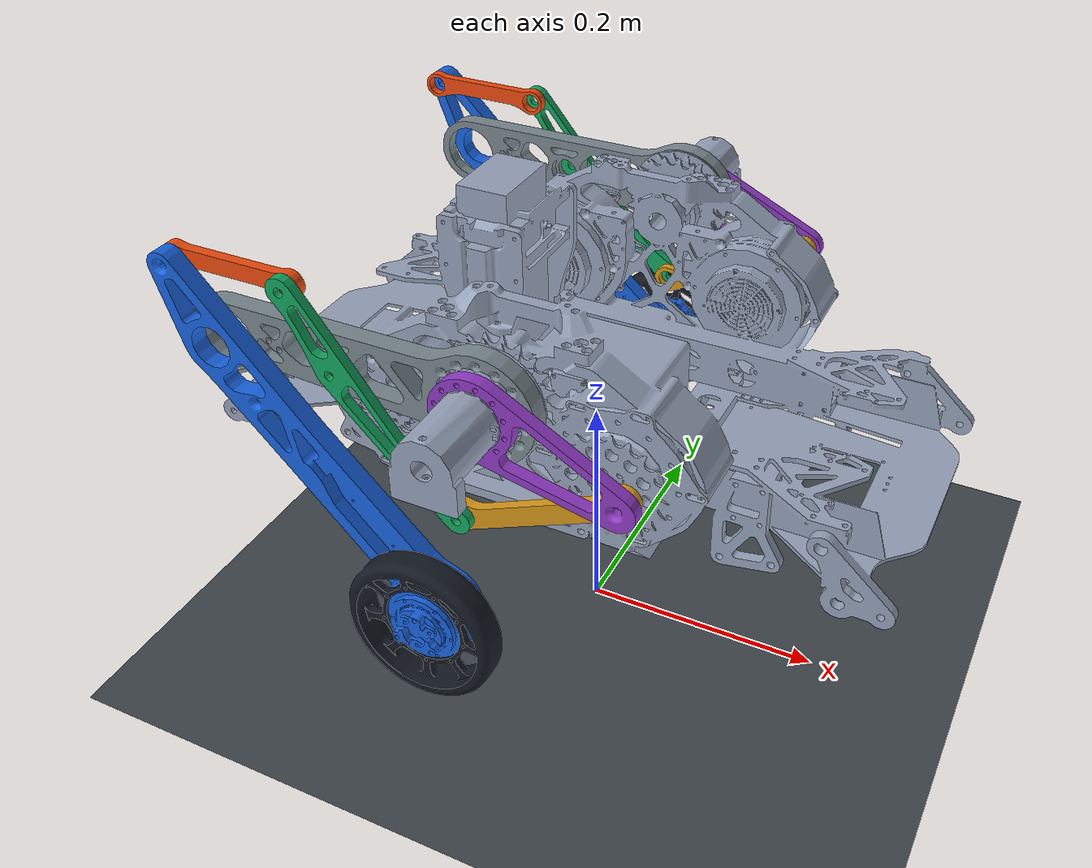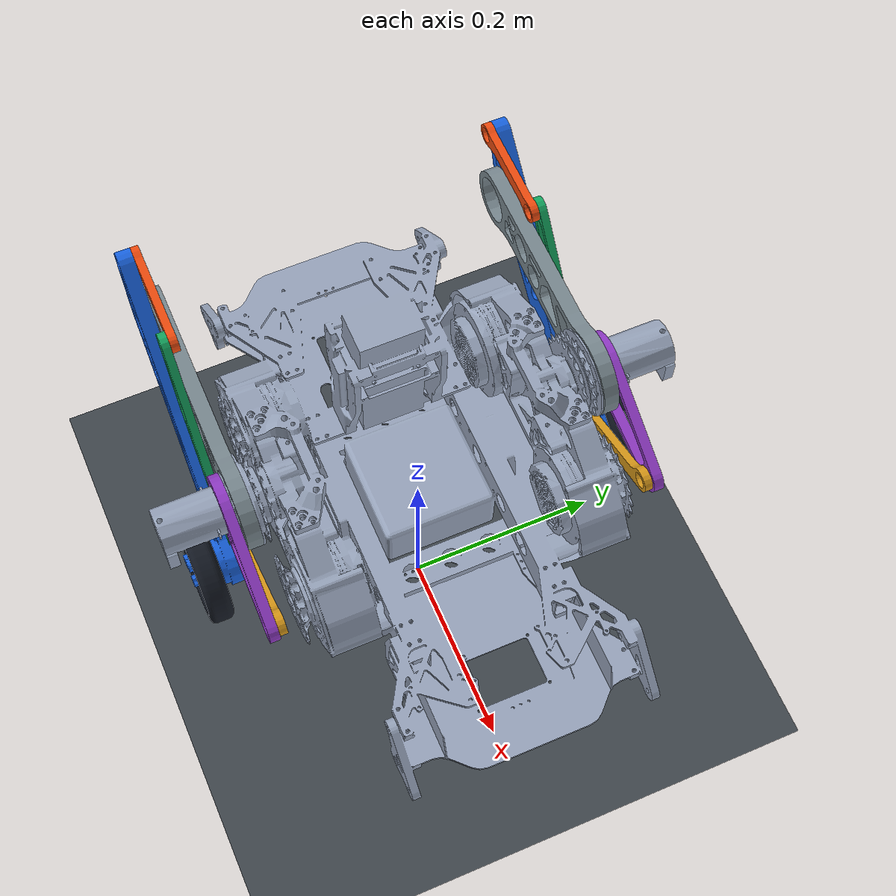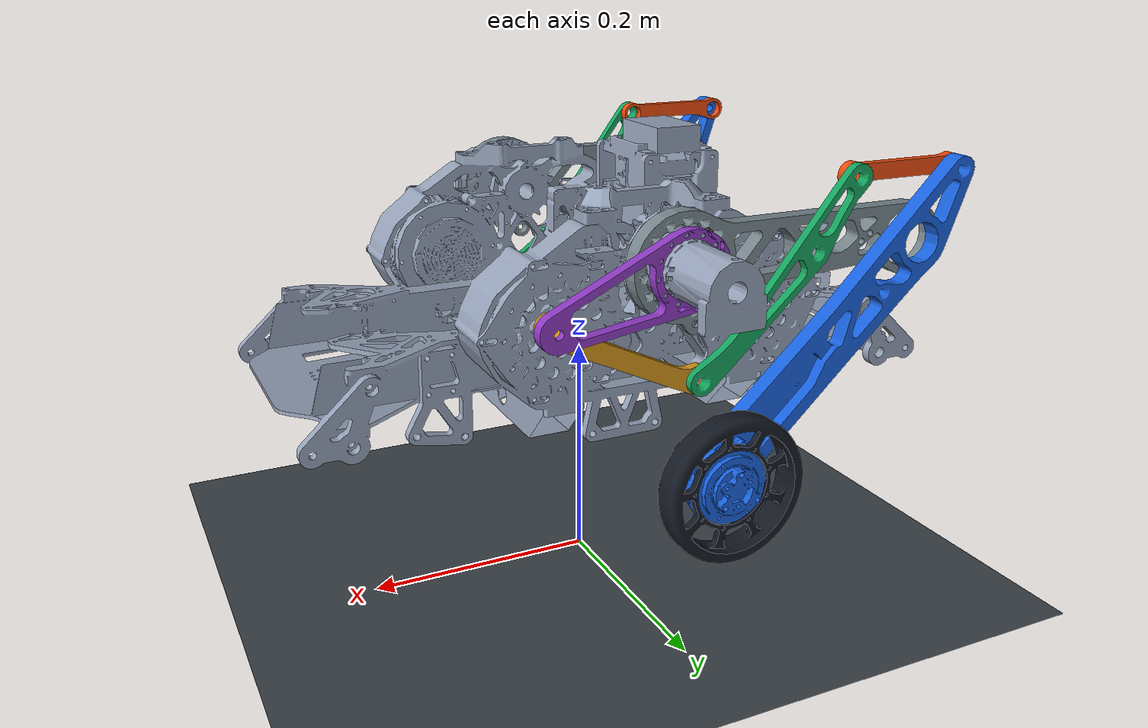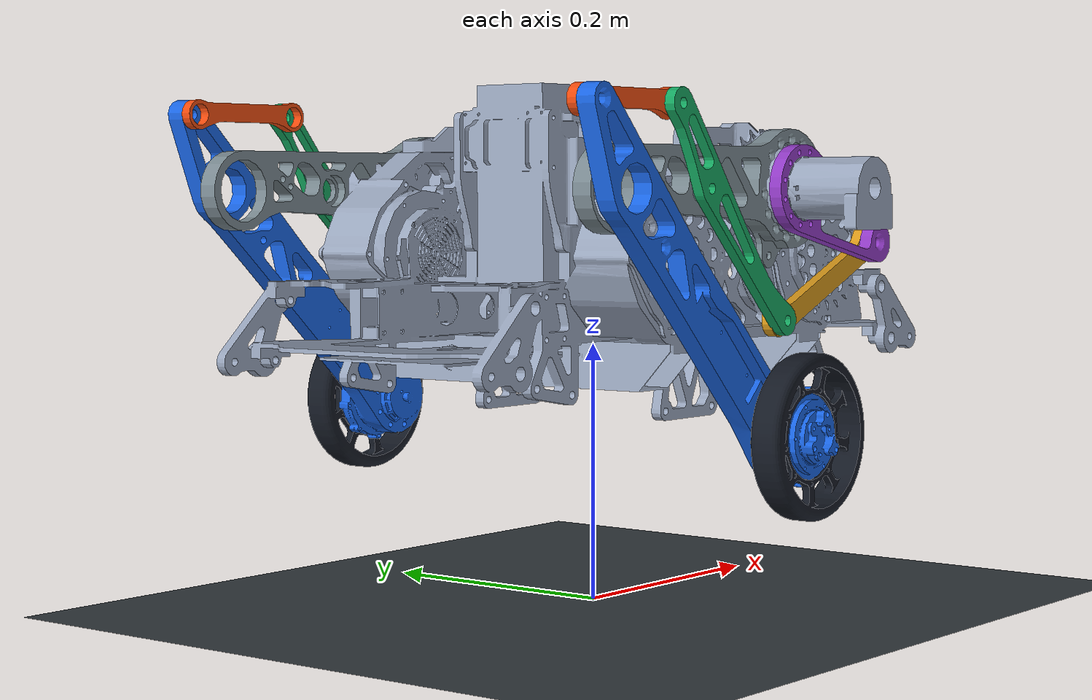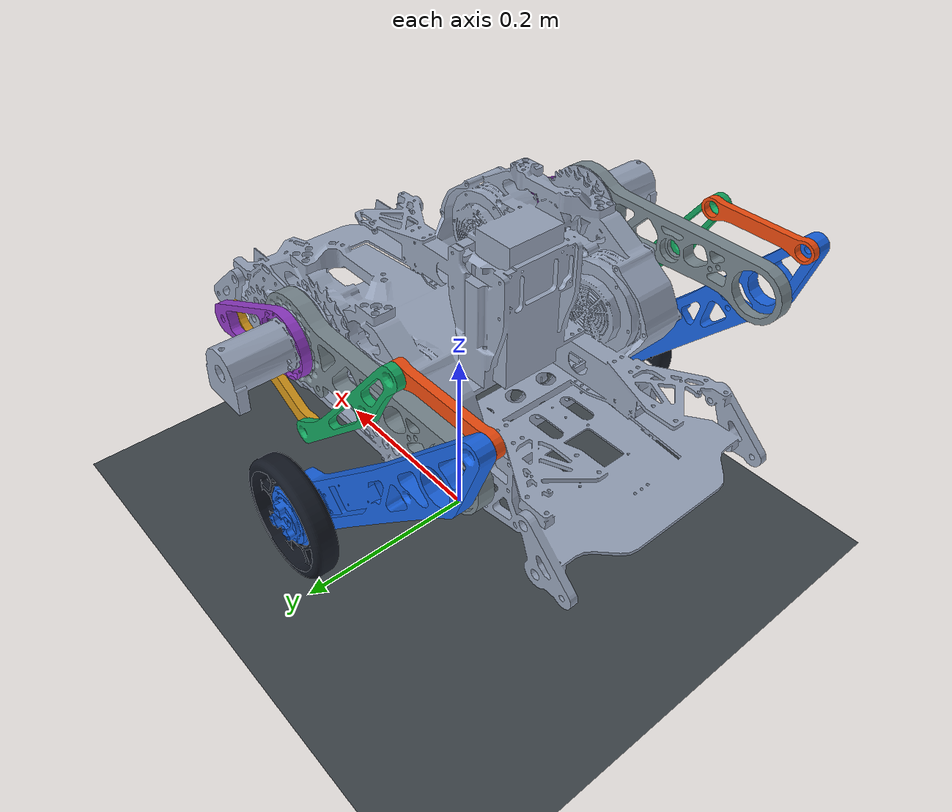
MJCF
<?xml version='1.0' encoding='utf-8'?>
<mujoco model="own_v40_closedchain_research">
  <compiler angle="radian" autolimits="true" inertiafromgeom="false" fusestatic="false" />
  <option timestep="0.0005" gravity="0 0 -9.81" integrator="implicitfast" solver="Newton" iterations="100" tolerance="1e-10" jacobian="dense">
    <flag energy="enable" />
  </option>
  <default>
    <joint damping="0.002" armature="0" solreflimit="0.002 1" solimplimit="0.99 0.999 0.001" />
    <geom friction="0.5 0.005 0.0001" solref="0.004 1" solimp="0.95 0.99 0.001" />
  </default>
  <asset>
    <mesh name="base_link_visual" file="meshes/base.stl" />
    <mesh name="base_link_collision_000" file="collisions/base_link_part_000.obj" />
    <mesh name="base_link_collision_001" file="collisions/base_link_part_001.obj" />
    <mesh name="base_link_collision_002" file="collisions/base_link_part_002.obj" />
    <mesh name="base_link_collision_003" file="collisions/base_link_part_003.obj" />
    <mesh name="base_link_collision_004" file="collisions/base_link_part_004.obj" />
    <mesh name="base_link_collision_005" file="collisions/base_link_part_005.obj" />
    <mesh name="base_link_collision_006" file="collisions/base_link_part_006.obj" />
    <mesh name="base_link_collision_007" file="collisions/base_link_part_007.obj" />
    <mesh name="base_link_collision_008" file="collisions/base_link_part_008.obj" />
    <mesh name="base_link_collision_009" file="collisions/base_link_part_009.obj" />
    <mesh name="base_link_collision_010" file="collisions/base_link_part_010.obj" />
    <mesh name="base_link_collision_011" file="collisions/base_link_part_011.obj" />
    <mesh name="base_link_collision_012" file="collisions/base_link_part_012.obj" />
    <mesh name="base_link_collision_013" file="collisions/base_link_part_013.obj" />
    <mesh name="L_link1_visual" file="meshes/L_C2.stl" />
    <mesh name="L_link1_collision_000" file="collisions/L_C2.obj" />
    <mesh name="L_crank_visual" file="meshes/L_C0.stl" />
    <mesh name="L_crank_collision_000" file="collisions/L_C0.obj" />
    <mesh name="L_lower_coupler_visual" file="meshes/L_C1.stl" />
    <mesh name="L_lower_coupler_collision_000" file="collisions/L_C1.obj" />
    <mesh name="L_rocker_visual" file="meshes/L_C3.stl" />
    <mesh name="L_rocker_collision_000" file="collisions/L_C3.obj" />
    <mesh name="L_upper_coupler_visual" file="meshes/L_C4.stl" />
    <mesh name="L_upper_coupler_collision_000" file="collisions/L_C4.obj" />
    <mesh name="L_link2_visual" file="meshes/L_shank.stl" />
    <mesh name="L_link2_collision_000" file="collisions/L_link2_part_000.obj" />
    <mesh name="L_link2_collision_001" file="collisions/L_link2_part_001.obj" />
    <mesh name="L_link2_collision_002" file="collisions/L_link2_part_002.obj" />
    <mesh name="L_link2_collision_003" file="collisions/L_link2_part_003.obj" />
    <mesh name="L_link2_collision_004" file="collisions/L_link2_part_004.obj" />
    <mesh name="L_link3_visual" file="meshes/L_wheel.stl" />
    <mesh name="R_link1_visual" file="meshes/R_C2.stl" />
    <mesh name="R_link1_collision_000" file="collisions/R_C2.obj" />
    <mesh name="R_crank_visual" file="meshes/R_C0.stl" />
    <mesh name="R_crank_collision_000" file="collisions/R_C0.obj" />
    <mesh name="R_lower_coupler_visual" file="meshes/R_C1.stl" />
    <mesh name="R_lower_coupler_collision_000" file="collisions/R_C1.obj" />
    <mesh name="R_rocker_visual" file="meshes/R_C3.stl" />
    <mesh name="R_rocker_collision_000" file="collisions/R_C3.obj" />
    <mesh name="R_upper_coupler_visual" file="meshes/R_C4.stl" />
    <mesh name="R_upper_coupler_collision_000" file="collisions/R_C4.obj" />
    <mesh name="R_link2_visual" file="meshes/R_shank.stl" />
    <mesh name="R_link2_collision_000" file="collisions/R_link2_part_000.obj" />
    <mesh name="R_link2_collision_001" file="collisions/R_link2_part_001.obj" />
    <mesh name="R_link2_collision_002" file="collisions/R_link2_part_002.obj" />
    <mesh name="R_link2_collision_003" file="collisions/R_link2_part_003.obj" />
    <mesh name="R_link2_collision_004" file="collisions/R_link2_part_004.obj" />
    <mesh name="R_link3_visual" file="meshes/R_wheel.stl" />
  </asset>
  <worldbody>
    <geom name="ground" type="plane" size="3 3 0.1" rgba="0.25 0.28 0.3 1" contype="1" conaffinity="2" />
    <body name="base_link" pos="0 0 0.32000000000000001" quat="1 0 0 0">
      <freejoint name="floating_base" />
      <inertial pos="-0.0050000000000000001 0.00029999999999999997 -0.052999999999999999" mass="10.800000000000001" fullinertia="0.17799999999999999 0.126 0.255 -0.00026400000000001157 -0.0041229999999999999 -0.00048999999999999912" />
      <geom name="base_link_visual" type="mesh" mesh="base_link_visual" pos="0 0 0" quat="0.70710678118654768 0 0 0.70710678118654746" rgba="0.59999999999999998 0.65000000000000002 0.73999999999999999 1" contype="0" conaffinity="0" group="2" density="0" />
      <geom name="base_link_collision_000" type="mesh" pos="0 0 0" quat="0.70710678118654768 0 0 0.70710678118654746" contype="2" conaffinity="1" group="3" rgba="0.5 0.5 0.5 0" density="0" mesh="base_link_collision_000" />
      <geom name="base_link_collision_001" type="mesh" pos="0 0 0" quat="0.70710678118654768 0 0 0.70710678118654746" contype="2" conaffinity="1" group="3" rgba="0.5 0.5 0.5 0" density="0" mesh="base_link_collision_001" />
      <geom name="base_link_collision_002" type="mesh" pos="0 0 0" quat="0.70710678118654768 0 0 0.70710678118654746" contype="2" conaffinity="1" group="3" rgba="0.5 0.5 0.5 0" density="0" mesh="base_link_collision_002" />
      <geom name="base_link_collision_003" type="mesh" pos="0 0 0" quat="0.70710678118654768 0 0 0.70710678118654746" contype="2" conaffinity="1" group="3" rgba="0.5 0.5 0.5 0" density="0" mesh="base_link_collision_003" />
      <geom name="base_link_collision_004" type="mesh" pos="0 0 0" quat="0.70710678118654768 0 0 0.70710678118654746" contype="2" conaffinity="1" group="3" rgba="0.5 0.5 0.5 0" density="0" mesh="base_link_collision_004" />
      <geom name="base_link_collision_005" type="mesh" pos="0 0 0" quat="0.70710678118654768 0 0 0.70710678118654746" contype="2" conaffinity="1" group="3" rgba="0.5 0.5 0.5 0" density="0" mesh="base_link_collision_005" />
      <geom name="base_link_collision_006" type="mesh" pos="0 0 0" quat="0.70710678118654768 0 0 0.70710678118654746" contype="2" conaffinity="1" group="3" rgba="0.5 0.5 0.5 0" density="0" mesh="base_link_collision_006" />
      <geom name="base_link_collision_007" type="mesh" pos="0 0 0" quat="0.70710678118654768 0 0 0.70710678118654746" contype="2" conaffinity="1" group="3" rgba="0.5 0.5 0.5 0" density="0" mesh="base_link_collision_007" />
      <geom name="base_link_collision_008" type="mesh" pos="0 0 0" quat="0.70710678118654768 0 0 0.70710678118654746" contype="2" conaffinity="1" group="3" rgba="0.5 0.5 0.5 0" density="0" mesh="base_link_collision_008" />
      <geom name="base_link_collision_009" type="mesh" pos="0 0 0" quat="0.70710678118654768 0 0 0.70710678118654746" contype="2" conaffinity="1" group="3" rgba="0.5 0.5 0.5 0" density="0" mesh="base_link_collision_009" />
      <geom name="base_link_collision_010" type="mesh" pos="0 0 0" quat="0.70710678118654768 0 0 0.70710678118654746" contype="2" conaffinity="1" group="3" rgba="0.5 0.5 0.5 0" density="0" mesh="base_link_collision_010" />
      <geom name="base_link_collision_011" type="mesh" pos="0 0 0" quat="0.70710678118654768 0 0 0.70710678118654746" contype="2" conaffinity="1" group="3" rgba="0.5 0.5 0.5 0" density="0" mesh="base_link_collision_011" />
      <geom name="base_link_collision_012" type="mesh" pos="0 0 0" quat="0.70710678118654768 0 0 0.70710678118654746" contype="2" conaffinity="1" group="3" rgba="0.5 0.5 0.5 0" density="0" mesh="base_link_collision_012" />
      <geom name="base_link_collision_013" type="mesh" pos="0 0 0" quat="0.70710678118654768 0 0 0.70710678118654746" contype="2" conaffinity="1" group="3" rgba="0.5 0.5 0.5 0" density="0" mesh="base_link_collision_013" />
      <body name="L_link1" pos="0 0.18379809434584801 -0.00083696764274401197" quat="-1.2100117119976404e-15 -1.2155343291810966e-15 0.70871492394629887 0.70549497275019035">
        <joint name="L_joint1" type="hinge" axis="0 0 -1" limited="false" />
        <inertial pos="0.095614654738413504 0.0033043436774199604 -0.0074883296932557629" mass="0.18228056645041626" fullinertia="8.7815210338960264e-05 0.0010615110305591375 0.0011427064474113162 -2.6108030814183793e-05 4.3728724662567771e-06 -5.8959476865339382e-07" />
        <geom name="L_link1_visual" type="mesh" mesh="L_link1_visual" pos="-0 -0 -0" quat="1 0 0 0" rgba="0.47999999999999998 0.54000000000000004 0.56999999999999995 1" contype="0" conaffinity="0" group="2" density="0" />
        <geom name="L_link1_collision_000" type="mesh" pos="-0 -0 -0" quat="1 0 0 0" contype="2" conaffinity="1" group="3" rgba="0.5 0.5 0.5 0" density="0" mesh="L_link1_collision_000" />
        <body name="L_crank" pos="-5.30552901294558e-19 -2.5626427031053585e-18 0" quat="0.99999999999608224 2.0684400899343297e-19 1.0345052076802126e-24 -2.7991960862351768e-06">
          <joint name="L_crank_O" type="hinge" axis="0 0 1" limited="false" />
          <inertial pos="-0.049812433890276814 -0.01514014536115295 0.0058039480295004157" mass="0.045842196247616533" fullinertia="2.3235309419594341e-05 9.6959712559760428e-05 0.00011944883815837006 -2.4664450605999792e-05 9.9313306483562188e-07 3.0141870298617644e-07" />
          <geom name="L_crank_visual" type="mesh" mesh="L_crank_visual" pos="5.3055290129457803e-19 2.5298050691328436e-18 -0" quat="1 0 0 0" rgba="0.56999999999999995 0.23000000000000001 0.78000000000000003 1" contype="0" conaffinity="0" group="2" density="0" />
          <geom name="L_crank_collision_000" type="mesh" pos="5.3055290129457803e-19 2.5298050691328436e-18 -0" quat="1 0 0 0" contype="2" conaffinity="1" group="3" rgba="0.5 0.5 0.5 0" density="0" mesh="L_crank_collision_000" />
          <body name="L_lower_coupler" pos="-0.10850217615093172 -0.032967221974287766 -2.7755575615628914e-17" quat="0.99999999999854516 -3.5592655132182422e-19 -2.1132529537885492e-24 1.7058164574029614e-06">
            <joint name="L_lower_A" type="hinge" axis="0 0 1" limited="false" />
            <inertial pos="0.059626241247400354 -0.03179900964804825 -0.00279999984195456" mass="0.032216812540136218" fullinertia="1.2043034410276933e-05 4.9532052947366062e-05 6.1231441314568816e-05 2.2918105222456961e-05 0 4.2189860436067365e-21" />
            <geom name="L_lower_coupler_visual" type="mesh" mesh="L_lower_coupler_visual" pos="0.10850217573169961 0.032967223663038149 -0" quat="1 0 0 0" rgba="0.84999999999999998 0.59999999999999998 0.10000000000000001 1" contype="0" conaffinity="0" group="2" density="0" />
            <geom name="L_lower_coupler_collision_000" type="mesh" pos="0.10850217573169961 0.032967223663038149 -0" quat="1 0 0 0" contype="2" conaffinity="1" group="3" rgba="0.5 0.5 0.5 0" density="0" mesh="L_lower_coupler_collision_000" />
            <site name="L_lower_D_0" pos="0.12199036861600152 -0.057821710946499565 0" size="0.001" rgba="1 0 0 0" />
          </body>
        </body>
        <body name="L_rocker" pos="0.11339999869335352 -2.5113228829675199e-10 2.7755575615628914e-17" quat="0.99999999999854405 1.1847838485395669e-19 3.7790417411980537e-25 -1.706420311056654e-06">
          <joint name="L_rocker_P" type="hinge" axis="0 0 1" limited="false" />
          <inertial pos="-0.029722072266995941 -0.02202456062507786 0.0039620787954702738" mass="0.045924810823811626" fullinertia="0.00010617663836688565 8.9909207633789877e-05 0.00019560154617928013 -9.4505851158998159e-05 1.4909068566747263e-08 1.8293211483223417e-08" />
          <geom name="L_rocker_visual" type="mesh" mesh="L_rocker_visual" pos="-0.11339999869335352 2.5113228840012801e-10 -0" quat="1 0 0 0" rgba="0.080000000000000002 0.66000000000000003 0.38 1" contype="0" conaffinity="0" group="2" density="0" />
          <geom name="L_rocker_collision_000" type="mesh" pos="-0.11339999869335352 2.5113228840012801e-10 -0" quat="1 0 0 0" contype="2" conaffinity="1" group="3" rgba="0.5 0.5 0.5 0" density="0" mesh="L_rocker_collision_000" />
          <site name="L_lower_D_1" pos="-0.099911807384897577 -0.090788932978438028 0" size="0.001" rgba="1 0 0 0" />
          <body name="L_upper_coupler" pos="0.036430839644988486 0.056229830590320336 0" quat="0.99999999999849853 -1.1967903052029491e-19 -8.8009673709670244e-25 1.7329278760635644e-06">
            <joint name="L_upper_B" type="hinge" axis="0 0 1" limited="false" />
            <inertial pos="0.048482934032658326 0.0014755928674203694 -0.004000000000000112" mass="0.019735613938019366" fullinertia="6.0623106920416359e-07 1.9433068124268855e-05 1.9828785938138684e-05 3.0764152012050254e-08 -2.2501258899235929e-20 -2.1094930218033682e-21" />
            <geom name="L_upper_coupler_visual" type="mesh" mesh="L_upper_coupler_visual" pos="-0.14983084544858088 -0.056229831457405254 -0" quat="1 0 0 0" rgba="0.94999999999999996 0.29999999999999999 0.059999999999999998 1" contype="0" conaffinity="0" group="2" density="0" />
            <geom name="L_upper_coupler_collision_000" type="mesh" pos="-0.14983084544858088 -0.056229831457405254 -0" quat="1 0 0 0" contype="2" conaffinity="1" group="3" rgba="0.5 0.5 0.5 0" density="0" mesh="L_upper_coupler_collision_000" />
            <site name="L_upper_E_0" pos="0.096599991517290845 1.4085954624931674e-15 0" size="0.001" rgba="1 0 0 0" />
          </body>
        </body>
        <body name="L_link2" pos="0.20999999999999999 0 0" quat="-0.36049295283219029 0 0 0.93276193691548559">
          <joint name="L_joint2" type="hinge" axis="0 0 1" limited="true" range="-0.1267274153917777 0.6586707480056704" />
          <inertial pos="0.15962999999999999 8.3412999999999996e-05 0.011927" mass="0.45000000000000001" fullinertia="0.00016699999999999999 0.0048999999999999998 0.00496 8.3999999999999995e-05 0.00019100000000000001 0" />
          <geom name="L_link2_visual" type="mesh" mesh="L_link2_visual" pos="-0 -0 -0" quat="1 0 0 0" rgba="0.10000000000000001 0.40000000000000002 0.90000000000000002 1" contype="0" conaffinity="0" group="2" density="0" />
          <geom name="L_link2_collision_000" type="mesh" pos="0 0 0" quat="1 0 0 0" contype="2" conaffinity="1" group="3" rgba="0.5 0.5 0.5 0" density="0" mesh="L_link2_collision_000" />
          <geom name="L_link2_collision_001" type="mesh" pos="0 0 0" quat="1 0 0 0" contype="2" conaffinity="1" group="3" rgba="0.5 0.5 0.5 0" density="0" mesh="L_link2_collision_001" />
          <geom name="L_link2_collision_002" type="mesh" pos="0 0 0" quat="1 0 0 0" contype="2" conaffinity="1" group="3" rgba="0.5 0.5 0.5 0" density="0" mesh="L_link2_collision_002" />
          <geom name="L_link2_collision_003" type="mesh" pos="0 0 0" quat="1 0 0 0" contype="2" conaffinity="1" group="3" rgba="0.5 0.5 0.5 0" density="0" mesh="L_link2_collision_003" />
          <geom name="L_link2_collision_004" type="mesh" pos="0 0 0" quat="1 0 0 0" contype="2" conaffinity="1" group="3" rgba="0.5 0.5 0.5 0" density="0" mesh="L_link2_collision_004" />
          <site name="L_upper_E_1" pos="-0.064777164947873556 -0.017114866671710253 0" size="0.001" rgba="1 0 0 0" />
          <body name="L_link3" pos="0.25 0 0.014999999999999999" quat="-0.70710548251123628 0 0 0.70710807985947355">
            <joint name="L_joint3" type="hinge" axis="0 0 1" limited="false" />
            <inertial pos="0 0 0.020472000000000001" mass="0.20000000000000001" fullinertia="0.00029599999999999998 0.00029599999999999998 0.00057499999999999999 0 0 0" />
            <geom name="L_link3_visual" type="mesh" mesh="L_link3_visual" pos="-0 -0 -0" quat="1 0 0 0" rgba="0.080000000000000002 0.10000000000000001 0.14000000000000001 1" contype="0" conaffinity="0" group="2" density="0" />
            <geom name="L_link3_collision_000" type="cylinder" pos="0 0 0.020350000821053982" quat="1 0 0 0" contype="2" conaffinity="1" group="3" rgba="0.5 0.5 0.5 0" density="0" size="0.060000003250648436 0.012500000186264515" />
          </body>
        </body>
      </body>
      <body name="R_link1" pos="0 -0.18279810471393301 0.00083241395589111295" quat="-1.2100117119976404e-15 -1.2155343291810966e-15 0.70871492394629887 0.70549497275019035">
        <joint name="R_joint1" type="hinge" axis="0 0 1" limited="false" />
        <inertial pos="0.095631518214782496 0.0033142219977605634 0.0074867512689581793" mass="0.18223652979939314" fullinertia="8.778171113052383e-05 0.0010606474003378808 0.0011418107670220798 -2.6004749970765659e-05 -4.3887030530714904e-06 5.8737697157460479e-07" />
        <geom name="R_link1_visual" type="mesh" mesh="R_link1_visual" pos="-0 -0 -0" quat="1 0 0 0" rgba="0.47999999999999998 0.54000000000000004 0.56999999999999995 1" contype="0" conaffinity="0" group="2" density="0" />
        <geom name="R_link1_collision_000" type="mesh" pos="-0 -0 -0" quat="1 0 0 0" contype="2" conaffinity="1" group="3" rgba="0.5 0.5 0.5 0" density="0" mesh="R_link1_collision_000" />
        <body name="R_crank" pos="2.8912057932940211e-19 9.4988226435684166e-18 2.7755575615628914e-17" quat="0.99999999975883724 2.0921147502379421e-19 1.700658189687305e-24 2.1961912247855186e-05">
          <joint name="R_crank_O" type="hinge" axis="0 0 1" limited="false" />
          <inertial pos="-0.048541907627497528 -0.018819838966984456 -0.0065960516544871601" mass="0.045856248017571287" fullinertia="2.7330881833245979e-05 9.2900978959255397e-05 0.00011948544823253826 -2.9891531141993325e-05 9.6813132257116957e-07 3.7489853249897649e-07" />
          <geom name="R_crank_visual" type="mesh" mesh="R_crank_visual" pos="-2.8912057932946783e-19 -9.2518585385429707e-18 -0" quat="1 0 0 0" rgba="0.56999999999999995 0.23000000000000001 0.78000000000000003 1" contype="0" conaffinity="0" group="2" density="0" />
          <geom name="R_crank_collision_000" type="mesh" pos="-2.8912057932946783e-19 -9.2518585385429707e-18 -0" quat="1 0 0 0" contype="2" conaffinity="1" group="3" rgba="0.5 0.5 0.5 0" density="0" mesh="R_crank_collision_000" />
          <body name="R_lower_coupler" pos="-0.10573552776207414 -0.040982413716477602 2.7755575615628914e-17" quat="0.9999999999022936 1.451715030548276e-19 4.244247189110579e-24 -1.397901265843822e-05">
            <joint name="R_lower_A" type="hinge" axis="0 0 1" limited="false" />
            <inertial pos="0.060496785698578845 -0.030109866840192588 0.0028000002494081859" mass="0.032226686578883446" fullinertia="1.0787666919864096e-05 5.0806294870519462e-05 6.1250210414211918e-05 2.1834857808727884e-05 -2.1101393980544997e-21 0" />
            <geom name="R_lower_coupler_visual" type="mesh" mesh="R_lower_coupler_visual" pos="0.10573552755907482 0.040982412765161728 -0" quat="1 0 0 0" rgba="0.84999999999999998 0.59999999999999998 0.10000000000000001 1" contype="0" conaffinity="0" group="2" density="0" />
            <geom name="R_lower_coupler_collision_000" type="mesh" pos="0.10573552755907482 0.040982412765161728 -0" quat="1 0 0 0" contype="2" conaffinity="1" group="3" rgba="0.5 0.5 0.5 0" density="0" mesh="R_lower_coupler_collision_000" />
            <site name="R_lower_D_0" pos="0.12356796211636703 -0.054368729958669877 0" size="0.001" rgba="1 0 0 0" />
          </body>
        </body>
        <body name="R_rocker" pos="0.11339999981993368 1.9705206894229518e-11 2.7755575615628914e-17" quat="0.99999999990211419 1.4712624038269308e-20 3.2210166882959392e-24 1.3991844262106432e-05">
          <joint name="R_rocker_P" type="hinge" axis="0 0 1" limited="false" />
          <inertial pos="-0.028662222583147989 -0.023387158265512589 -0.0040379213799522015" mass="0.045938883983757756" fullinertia="0.00011498458086895475 8.1161355406421745e-05 0.00019566148799844964 -9.3365014926712506e-05 1.4043714379754925e-08 1.8974611215545835e-08" />
          <geom name="R_rocker_visual" type="mesh" mesh="R_rocker_visual" pos="-0.11339999981993368 -1.9705206629380733e-11 -0" quat="1 0 0 0" rgba="0.080000000000000002 0.66000000000000003 0.38 1" contype="0" conaffinity="0" group="2" density="0" />
          <geom name="R_rocker_collision_000" type="mesh" pos="-0.11339999981993368 -1.9705206629380733e-11 -0" quat="1 0 0 0" contype="2" conaffinity="1" group="3" rgba="0.5 0.5 0.5 0" density="0" mesh="R_rocker_collision_000" />
          <site name="R_lower_D_1" pos="-0.095567565548863892 -0.095351140800231438 0" size="0.001" rgba="1 0 0 0" />
          <body name="R_upper_coupler" pos="0.03376795328371246 0.057868172522990036 0" quat="0.99999999990209776 2.9257804533490209e-19 5.7181344496001632e-24 -1.3993020896858037e-05">
            <joint name="R_upper_B" type="hinge" axis="0 0 1" limited="false" />
            <inertial pos="0.048482922820609869 0.0014755923029764195 0.0040000001899895676" mass="0.019741651620394367" fullinertia="6.0641639478551622e-07 1.9439005101324119e-05 1.9834843858821619e-05 3.0773630156283471e-08 -2.8135191974059997e-21 -4.2202787961089995e-21" />
            <geom name="R_upper_coupler_visual" type="mesh" mesh="R_upper_coupler_visual" pos="-0.14716796325964701 -0.057868171682193513 -0" quat="1 0 0 0" rgba="0.94999999999999996 0.29999999999999999 0.059999999999999998 1" contype="0" conaffinity="0" group="2" density="0" />
            <geom name="R_upper_coupler_collision_000" type="mesh" pos="-0.14716796325964701 -0.057868171682193513 -0" quat="1 0 0 0" contype="2" conaffinity="1" group="3" rgba="0.5 0.5 0.5 0" density="0" mesh="R_upper_coupler_collision_000" />
            <site name="R_upper_E_0" pos="0.096599996089935303 0 0" size="0.001" rgba="1 0 0 0" />
          </body>
        </body>
        <body name="R_link2" pos="0.20999999999999999 0 0" quat="-0.3821726949867929 0 0 0.92409092150422723">
          <joint name="R_jonit2" type="hinge" axis="0 0 -1" limited="true" range="-0.6119707480056704 0.1734274153917776" />
          <inertial pos="0.15962999999999999 8.3411999999999994e-05 -0.011927" mass="0.45000000000000001" fullinertia="0.00016699999999999999 0.0048999999999999998 0.00496 8.3999999999999995e-05 -0.000192 0" />
          <geom name="R_link2_visual" type="mesh" mesh="R_link2_visual" pos="-0 -0 -0" quat="1 0 0 0" rgba="0.10000000000000001 0.40000000000000002 0.90000000000000002 1" contype="0" conaffinity="0" group="2" density="0" />
          <geom name="R_link2_collision_000" type="mesh" pos="0 0 0" quat="1 0 0 0" contype="2" conaffinity="1" group="3" rgba="0.5 0.5 0.5 0" density="0" mesh="R_link2_collision_000" />
          <geom name="R_link2_collision_001" type="mesh" pos="0 0 0" quat="1 0 0 0" contype="2" conaffinity="1" group="3" rgba="0.5 0.5 0.5 0" density="0" mesh="R_link2_collision_001" />
          <geom name="R_link2_collision_002" type="mesh" pos="0 0 0" quat="1 0 0 0" contype="2" conaffinity="1" group="3" rgba="0.5 0.5 0.5 0" density="0" mesh="R_link2_collision_002" />
          <geom name="R_link2_collision_003" type="mesh" pos="0 0 0" quat="1 0 0 0" contype="2" conaffinity="1" group="3" rgba="0.5 0.5 0.5 0" density="0" mesh="R_link2_collision_003" />
          <geom name="R_link2_collision_004" type="mesh" pos="0 0 0" quat="1 0 0 0" contype="2" conaffinity="1" group="3" rgba="0.5 0.5 0.5 0" density="0" mesh="R_link2_collision_004" />
          <site name="R_upper_E_1" pos="-0.064777164947873556 -0.017114866671710253 0" size="0.001" rgba="1 0 0 0" />
          <body name="R_link3" pos="0.249999999999996 0 -0.0150000000000006" quat="1.6155445744325867e-15 0 0 1">
            <joint name="R_joint3" type="hinge" axis="0 0 -1" limited="false" />
            <inertial pos="0 0 -0.020472000000000001" mass="0.20000000000000001" fullinertia="0.00029599999999999998 0.00029599999999999998 0.00057499999999999999 0 0 0" />
            <geom name="R_link3_visual" type="mesh" mesh="R_link3_visual" pos="-0 -0 -0" quat="1 0 0 0" rgba="0.080000000000000002 0.10000000000000001 0.14000000000000001 1" contype="0" conaffinity="0" group="2" density="0" />
            <geom name="R_link3_collision_000" type="cylinder" pos="0 0 -0.020350000821053982" quat="1 0 0 0" contype="2" conaffinity="1" group="3" rgba="0.5 0.5 0.5 0" density="0" size="0.060000003154563872 0.012500000186264515" />
          </body>
        </body>
      </body>
    </body>
  </worldbody>
  <equality>
    <connect name="L_lower_D" site1="L_lower_D_0" site2="L_lower_D_1" solref="0.002 1" solimp="0.99 0.999 0.001" />
    <connect name="L_upper_E" site1="L_upper_E_0" site2="L_upper_E_1" solref="0.002 1" solimp="0.99 0.999 0.001" />
    <connect name="R_lower_D" site1="R_lower_D_0" site2="R_lower_D_1" solref="0.002 1" solimp="0.99 0.999 0.001" />
    <connect name="R_upper_E" site1="R_upper_E_0" site2="R_upper_E_1" solref="0.002 1" solimp="0.99 0.999 0.001" />
  </equality>
  <actuator>
    <motor name="L_joint1_equivalent_torque" joint="L_joint1" gear="1" />
    <motor name="L_joint2_equivalent_torque" joint="L_joint2" gear="1" />
    <motor name="L_joint3_equivalent_torque" joint="L_joint3" gear="1" />
    <motor name="R_joint1_equivalent_torque" joint="R_joint1" gear="1" />
    <motor name="R_jonit2_equivalent_torque" joint="R_jonit2" gear="1" />
    <motor name="R_joint3_equivalent_torque" joint="R_joint3" gear="1" />
  </actuator>
  <keyframe>
    <key name="nominal" qpos="0 0 0.32000000000000001 1 0 0 0 0.41526541073209217 0.63501988571976675 -0.4489079723713123 0.44890797976139241 -0.44890803023530007 0.44890796255584864 0 -0.42250891703703075 0.57389712129296355 -0.41299560942065056 0.41299561310914484 -0.41299562941042783 -0.41299561952806407 0" />
  </keyframe>
</mujoco>
